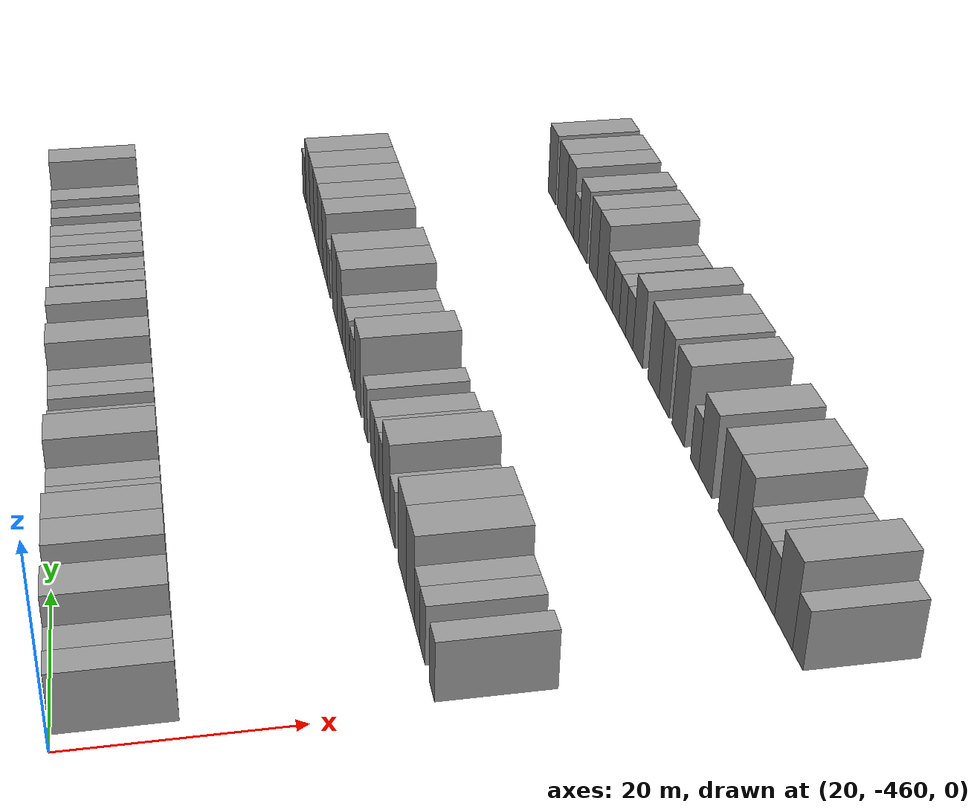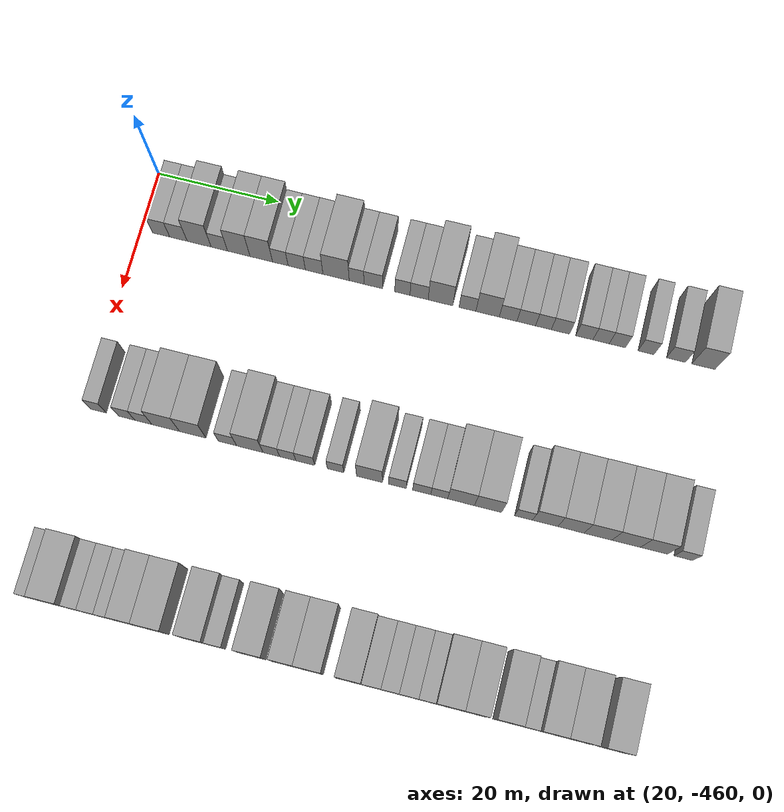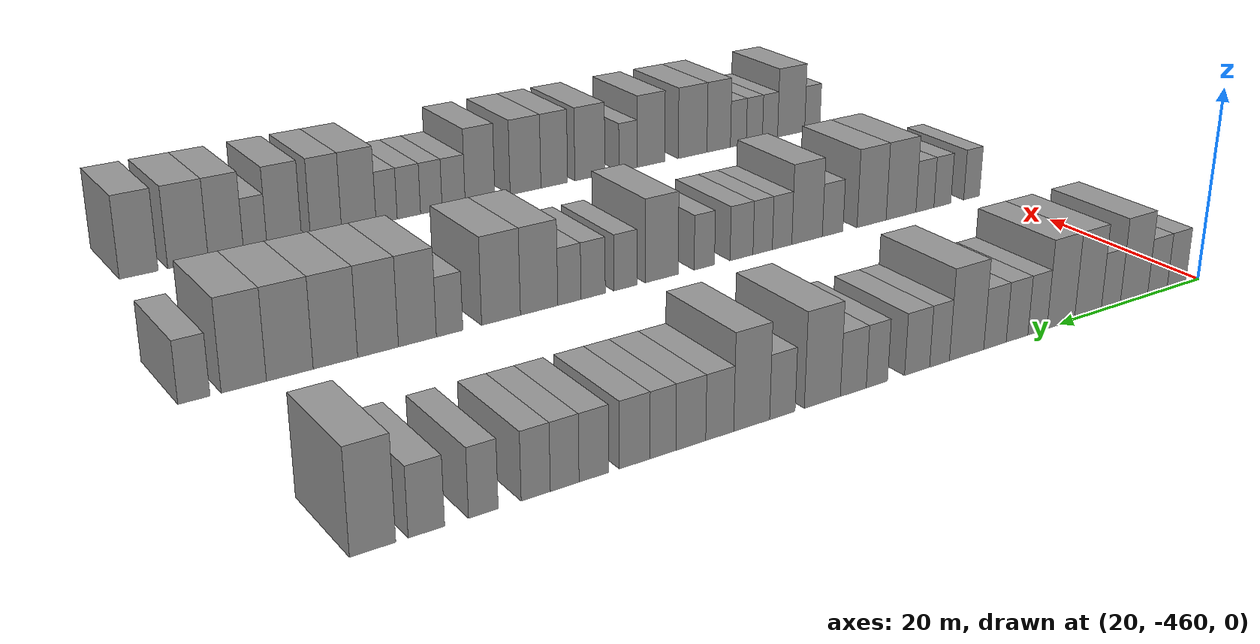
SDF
<sdf version="1.6">
 <world name="default">
  <model name="building_1">
   <static>1</static>
   <pose>25.0000 -456.5878 0 0.000000 0.000000 0.000000</pose>
   <link name="link">
    <pose>0 0 3.00 0 0 0</pose>
    <collision name="collision"><geometry><box><size>10.0000 2.8245 6.0000</size></box></geometry></collision>
    <visual name="visual">
     <cast_shadows>0</cast_shadows>
     <geometry><box><size>10.0000 2.8245 6.0000</size></box></geometry>
     <material>
      <script>
       <uri>model://grey_wall/materials/scripts</uri>
       <uri>model://grey_wall/materials/textures</uri>
       <name>vrc/grey_wall</name>
      </script>
     </material>
    </visual>
   </link>
  </model>
  <model name="building_2">
   <static>1</static>
   <pose>25.0000 -453.7290 0 0.000000 0.000000 0.000000</pose>
   <link name="link">
    <pose>0 0 3.00 0 0 0</pose>
    <collision name="collision"><geometry><box><size>10.0000 2.8931 6.0000</size></box></geometry></collision>
    <visual name="visual">
     <cast_shadows>0</cast_shadows>
     <geometry><box><size>10.0000 2.8931 6.0000</size></box></geometry>
     <material>
      <script>
       <uri>model://grey_wall/materials/scripts</uri>
       <uri>model://grey_wall/materials/textures</uri>
       <name>vrc/grey_wall</name>
      </script>
     </material>
    </visual>
   </link>
  </model>
  <model name="building_3">
   <static>1</static>
   <pose>25.0000 -450.3081 0 0.000000 0.000000 0.000000</pose>
   <link name="link">
    <pose>0 0 4.50 0 0 0</pose>
    <collision name="collision"><geometry><box><size>10.0000 3.9486 9.0000</size></box></geometry></collision>
    <visual name="visual">
     <cast_shadows>0</cast_shadows>
     <geometry><box><size>10.0000 3.9486 9.0000</size></box></geometry>
     <material>
      <script>
       <uri>model://grey_wall/materials/scripts</uri>
       <uri>model://grey_wall/materials/textures</uri>
       <name>vrc/grey_wall</name>
      </script>
     </material>
    </visual>
   </link>
  </model>
  <model name="building_4">
   <static>1</static>
   <pose>25.0000 -446.9821 0 0.000000 0.000000 0.000000</pose>
   <link name="link">
    <pose>0 0 3.00 0 0 0</pose>
    <collision name="collision"><geometry><box><size>10.0000 2.7034 6.0000</size></box></geometry></collision>
    <visual name="visual">
     <cast_shadows>0</cast_shadows>
     <geometry><box><size>10.0000 2.7034 6.0000</size></box></geometry>
     <material>
      <script>
       <uri>model://grey_wall/materials/scripts</uri>
       <uri>model://grey_wall/materials/textures</uri>
       <name>vrc/grey_wall</name>
      </script>
     </material>
    </visual>
   </link>
  </model>
  <model name="building_5">
   <static>1</static>
   <pose>25.0000 -443.7848 0 0.000000 0.000000 0.000000</pose>
   <link name="link">
    <pose>0 0 4.50 0 0 0</pose>
    <collision name="collision"><geometry><box><size>10.0000 3.6912 9.0000</size></box></geometry></collision>
    <visual name="visual">
     <cast_shadows>0</cast_shadows>
     <geometry><box><size>10.0000 3.6912 9.0000</size></box></geometry>
     <material>
      <script>
       <uri>model://grey_wall/materials/scripts</uri>
       <uri>model://grey_wall/materials/textures</uri>
       <name>vrc/grey_wall</name>
      </script>
     </material>
    </visual>
   </link>
  </model>
  <model name="building_6">
   <static>1</static>
   <pose>25.0000 -440.0766 0 0.000000 0.000000 0.000000</pose>
   <link name="link">
    <pose>0 0 4.50 0 0 0</pose>
    <collision name="collision"><geometry><box><size>10.0000 3.7251 9.0000</size></box></geometry></collision>
    <visual name="visual">
     <cast_shadows>0</cast_shadows>
     <geometry><box><size>10.0000 3.7251 9.0000</size></box></geometry>
     <material>
      <script>
       <uri>model://grey_wall/materials/scripts</uri>
       <uri>model://grey_wall/materials/textures</uri>
       <name>vrc/grey_wall</name>
      </script>
     </material>
    </visual>
   </link>
  </model>
  <model name="building_7">
   <static>1</static>
   <pose>25.0000 -436.9483 0 0.000000 0.000000 0.000000</pose>
   <link name="link">
    <pose>0 0 3.00 0 0 0</pose>
    <collision name="collision"><geometry><box><size>10.0000 2.5317 6.0000</size></box></geometry></collision>
    <visual name="visual">
     <cast_shadows>0</cast_shadows>
     <geometry><box><size>10.0000 2.5317 6.0000</size></box></geometry>
     <material>
      <script>
       <uri>model://grey_wall/materials/scripts</uri>
       <uri>model://grey_wall/materials/textures</uri>
       <name>vrc/grey_wall</name>
      </script>
     </material>
    </visual>
   </link>
  </model>
  <model name="building_8">
   <static>1</static>
   <pose>25.0000 -434.2681 0 0.000000 0.000000 0.000000</pose>
   <link name="link">
    <pose>0 0 3.00 0 0 0</pose>
    <collision name="collision"><geometry><box><size>10.0000 2.8287 6.0000</size></box></geometry></collision>
    <visual name="visual">
     <cast_shadows>0</cast_shadows>
     <geometry><box><size>10.0000 2.8287 6.0000</size></box></geometry>
     <material>
      <script>
       <uri>model://grey_wall/materials/scripts</uri>
       <uri>model://grey_wall/materials/textures</uri>
       <name>vrc/grey_wall</name>
      </script>
     </material>
    </visual>
   </link>
  </model>
  <model name="building_9">
   <static>1</static>
   <pose>25.0000 -431.4158 0 0.000000 0.000000 0.000000</pose>
   <link name="link">
    <pose>0 0 3.00 0 0 0</pose>
    <collision name="collision"><geometry><box><size>10.0000 2.8757 6.0000</size></box></geometry></collision>
    <visual name="visual">
     <cast_shadows>0</cast_shadows>
     <geometry><box><size>10.0000 2.8757 6.0000</size></box></geometry>
     <material>
      <script>
       <uri>model://grey_wall/materials/scripts</uri>
       <uri>model://grey_wall/materials/textures</uri>
       <name>vrc/grey_wall</name>
      </script>
     </material>
    </visual>
   </link>
  </model>
  <model name="building_10">
   <static>1</static>
   <pose>25.0000 -427.8407 0 0.000000 0.000000 0.000000</pose>
   <link name="link">
    <pose>0 0 4.50 0 0 0</pose>
    <collision name="collision"><geometry><box><size>10.0000 4.2745 9.0000</size></box></geometry></collision>
    <visual name="visual">
     <cast_shadows>0</cast_shadows>
     <geometry><box><size>10.0000 4.2745 9.0000</size></box></geometry>
     <material>
      <script>
       <uri>model://grey_wall/materials/scripts</uri>
       <uri>model://grey_wall/materials/textures</uri>
       <name>vrc/grey_wall</name>
      </script>
     </material>
    </visual>
   </link>
  </model>
  <model name="building_11">
   <static>1</static>
   <pose>25.0000 -424.4925 0 0.000000 0.000000 0.000000</pose>
   <link name="link">
    <pose>0 0 3.00 0 0 0</pose>
    <collision name="collision"><geometry><box><size>10.0000 2.4220 6.0000</size></box></geometry></collision>
    <visual name="visual">
     <cast_shadows>0</cast_shadows>
     <geometry><box><size>10.0000 2.4220 6.0000</size></box></geometry>
     <material>
      <script>
       <uri>model://grey_wall/materials/scripts</uri>
       <uri>model://grey_wall/materials/textures</uri>
       <name>vrc/grey_wall</name>
      </script>
     </material>
    </visual>
   </link>
  </model>
  <model name="building_12">
   <static>1</static>
   <pose>25.0000 -421.7866 0 0.000000 0.000000 0.000000</pose>
   <link name="link">
    <pose>0 0 3.00 0 0 0</pose>
    <collision name="collision"><geometry><box><size>10.0000 2.9898 6.0000</size></box></geometry></collision>
    <visual name="visual">
     <cast_shadows>0</cast_shadows>
     <geometry><box><size>10.0000 2.9898 6.0000</size></box></geometry>
     <material>
      <script>
       <uri>model://grey_wall/materials/scripts</uri>
       <uri>model://grey_wall/materials/textures</uri>
       <name>vrc/grey_wall</name>
      </script>
     </material>
    </visual>
   </link>
  </model>
  <model name="building_13">
   <static>1</static>
   <pose>25.0000 -417.0590 0 0.000000 0.000000 0.000000</pose>
   <link name="link">
    <pose>0 0 3.00 0 0 0</pose>
    <collision name="collision"><geometry><box><size>10.0000 2.4655 6.0000</size></box></geometry></collision>
    <visual name="visual">
     <cast_shadows>0</cast_shadows>
     <geometry><box><size>10.0000 2.4655 6.0000</size></box></geometry>
     <material>
      <script>
       <uri>model://grey_wall/materials/scripts</uri>
       <uri>model://grey_wall/materials/textures</uri>
       <name>vrc/grey_wall</name>
      </script>
     </material>
    </visual>
   </link>
  </model>
  <model name="building_14">
   <static>1</static>
   <pose>25.0000 -414.3582 0 0.000000 0.000000 0.000000</pose>
   <link name="link">
    <pose>0 0 3.00 0 0 0</pose>
    <collision name="collision"><geometry><box><size>10.0000 2.9362 6.0000</size></box></geometry></collision>
    <visual name="visual">
     <cast_shadows>0</cast_shadows>
     <geometry><box><size>10.0000 2.9362 6.0000</size></box></geometry>
     <material>
      <script>
       <uri>model://grey_wall/materials/scripts</uri>
       <uri>model://grey_wall/materials/textures</uri>
       <name>vrc/grey_wall</name>
      </script>
     </material>
    </visual>
   </link>
  </model>
  <model name="building_15">
   <static>1</static>
   <pose>25.0000 -410.9005 0 0.000000 0.000000 0.000000</pose>
   <link name="link">
    <pose>0 0 4.50 0 0 0</pose>
    <collision name="collision"><geometry><box><size>10.0000 3.9791 9.0000</size></box></geometry></collision>
    <visual name="visual">
     <cast_shadows>0</cast_shadows>
     <geometry><box><size>10.0000 3.9791 9.0000</size></box></geometry>
     <material>
      <script>
       <uri>model://grey_wall/materials/scripts</uri>
       <uri>model://grey_wall/materials/textures</uri>
       <name>vrc/grey_wall</name>
      </script>
     </material>
    </visual>
   </link>
  </model>
  <model name="building_16">
   <static>1</static>
   <pose>25.0000 -406.5454 0 0.000000 0.000000 0.000000</pose>
   <link name="link">
    <pose>0 0 3.00 0 0 0</pose>
    <collision name="collision"><geometry><box><size>10.0000 2.7313 6.0000</size></box></geometry></collision>
    <visual name="visual">
     <cast_shadows>0</cast_shadows>
     <geometry><box><size>10.0000 2.7313 6.0000</size></box></geometry>
     <material>
      <script>
       <uri>model://grey_wall/materials/scripts</uri>
       <uri>model://grey_wall/materials/textures</uri>
       <name>vrc/grey_wall</name>
      </script>
     </material>
    </visual>
   </link>
  </model>
  <model name="building_17">
   <static>1</static>
   <pose>25.0000 -403.3031 0 0.000000 0.000000 0.000000</pose>
   <link name="link">
    <pose>0 0 4.50 0 0 0</pose>
    <collision name="collision"><geometry><box><size>10.0000 3.7533 9.0000</size></box></geometry></collision>
    <visual name="visual">
     <cast_shadows>0</cast_shadows>
     <geometry><box><size>10.0000 3.7533 9.0000</size></box></geometry>
     <material>
      <script>
       <uri>model://grey_wall/materials/scripts</uri>
       <uri>model://grey_wall/materials/textures</uri>
       <name>vrc/grey_wall</name>
      </script>
     </material>
    </visual>
   </link>
  </model>
  <model name="building_18">
   <static>1</static>
   <pose>25.0000 -400.0018 0 0.000000 0.000000 0.000000</pose>
   <link name="link">
    <pose>0 0 3.00 0 0 0</pose>
    <collision name="collision"><geometry><box><size>10.0000 2.8493 6.0000</size></box></geometry></collision>
    <visual name="visual">
     <cast_shadows>0</cast_shadows>
     <geometry><box><size>10.0000 2.8493 6.0000</size></box></geometry>
     <material>
      <script>
       <uri>model://grey_wall/materials/scripts</uri>
       <uri>model://grey_wall/materials/textures</uri>
       <name>vrc/grey_wall</name>
      </script>
     </material>
    </visual>
   </link>
  </model>
  <model name="building_19">
   <static>1</static>
   <pose>25.0000 -397.0880 0 0.000000 0.000000 0.000000</pose>
   <link name="link">
    <pose>0 0 3.00 0 0 0</pose>
    <collision name="collision"><geometry><box><size>10.0000 2.9783 6.0000</size></box></geometry></collision>
    <visual name="visual">
     <cast_shadows>0</cast_shadows>
     <geometry><box><size>10.0000 2.9783 6.0000</size></box></geometry>
     <material>
      <script>
       <uri>model://grey_wall/materials/scripts</uri>
       <uri>model://grey_wall/materials/textures</uri>
       <name>vrc/grey_wall</name>
      </script>
     </material>
    </visual>
   </link>
  </model>
  <model name="building_20">
   <static>1</static>
   <pose>25.0000 -394.3391 0 0.000000 0.000000 0.000000</pose>
   <link name="link">
    <pose>0 0 3.00 0 0 0</pose>
    <collision name="collision"><geometry><box><size>10.0000 2.5194 6.0000</size></box></geometry></collision>
    <visual name="visual">
     <cast_shadows>0</cast_shadows>
     <geometry><box><size>10.0000 2.5194 6.0000</size></box></geometry>
     <material>
      <script>
       <uri>model://grey_wall/materials/scripts</uri>
       <uri>model://grey_wall/materials/textures</uri>
       <name>vrc/grey_wall</name>
      </script>
     </material>
    </visual>
   </link>
  </model>
  <model name="building_21">
   <static>1</static>
   <pose>25.0000 -391.6232 0 0.000000 0.000000 0.000000</pose>
   <link name="link">
    <pose>0 0 3.00 0 0 0</pose>
    <collision name="collision"><geometry><box><size>10.0000 2.9125 6.0000</size></box></geometry></collision>
    <visual name="visual">
     <cast_shadows>0</cast_shadows>
     <geometry><box><size>10.0000 2.9125 6.0000</size></box></geometry>
     <material>
      <script>
       <uri>model://grey_wall/materials/scripts</uri>
       <uri>model://grey_wall/materials/textures</uri>
       <name>vrc/grey_wall</name>
      </script>
     </material>
    </visual>
   </link>
  </model>
  <model name="building_22">
   <static>1</static>
   <pose>25.0000 -387.7908 0 0.000000 0.000000 0.000000</pose>
   <link name="link">
    <pose>0 0 3.00 0 0 0</pose>
    <collision name="collision"><geometry><box><size>10.0000 2.7523 6.0000</size></box></geometry></collision>
    <visual name="visual">
     <cast_shadows>0</cast_shadows>
     <geometry><box><size>10.0000 2.7523 6.0000</size></box></geometry>
     <material>
      <script>
       <uri>model://grey_wall/materials/scripts</uri>
       <uri>model://grey_wall/materials/textures</uri>
       <name>vrc/grey_wall</name>
      </script>
     </material>
    </visual>
   </link>
  </model>
  <model name="building_23">
   <static>1</static>
   <pose>25.0000 -385.1148 0 0.000000 0.000000 0.000000</pose>
   <link name="link">
    <pose>0 0 3.00 0 0 0</pose>
    <collision name="collision"><geometry><box><size>10.0000 2.5996 6.0000</size></box></geometry></collision>
    <visual name="visual">
     <cast_shadows>0</cast_shadows>
     <geometry><box><size>10.0000 2.5996 6.0000</size></box></geometry>
     <material>
      <script>
       <uri>model://grey_wall/materials/scripts</uri>
       <uri>model://grey_wall/materials/textures</uri>
       <name>vrc/grey_wall</name>
      </script>
     </material>
    </visual>
   </link>
  </model>
  <model name="building_24">
   <static>1</static>
   <pose>25.0000 -382.5200 0 0.000000 0.000000 0.000000</pose>
   <link name="link">
    <pose>0 0 3.00 0 0 0</pose>
    <collision name="collision"><geometry><box><size>10.0000 2.5900 6.0000</size></box></geometry></collision>
    <visual name="visual">
     <cast_shadows>0</cast_shadows>
     <geometry><box><size>10.0000 2.5900 6.0000</size></box></geometry>
     <material>
      <script>
       <uri>model://grey_wall/materials/scripts</uri>
       <uri>model://grey_wall/materials/textures</uri>
       <name>vrc/grey_wall</name>
      </script>
     </material>
    </visual>
   </link>
  </model>
  <model name="building_25">
   <static>1</static>
   <pose>25.0000 -377.9569 0 0.000000 0.000000 0.000000</pose>
   <link name="link">
    <pose>0 0 3.00 0 0 0</pose>
    <collision name="collision"><geometry><box><size>10.0000 2.5362 6.0000</size></box></geometry></collision>
    <visual name="visual">
     <cast_shadows>0</cast_shadows>
     <geometry><box><size>10.0000 2.5362 6.0000</size></box></geometry>
     <material>
      <script>
       <uri>model://grey_wall/materials/scripts</uri>
       <uri>model://grey_wall/materials/textures</uri>
       <name>vrc/grey_wall</name>
      </script>
     </material>
    </visual>
   </link>
  </model>
  <model name="building_26">
   <static>1</static>
   <pose>25.0000 -373.1911 0 0.000000 0.000000 0.000000</pose>
   <link name="link">
    <pose>0 0 3.00 0 0 0</pose>
    <collision name="collision"><geometry><box><size>10.0000 2.9954 6.0000</size></box></geometry></collision>
    <visual name="visual">
     <cast_shadows>0</cast_shadows>
     <geometry><box><size>10.0000 2.9954 6.0000</size></box></geometry>
     <material>
      <script>
       <uri>model://grey_wall/materials/scripts</uri>
       <uri>model://grey_wall/materials/textures</uri>
       <name>vrc/grey_wall</name>
      </script>
     </material>
    </visual>
   </link>
  </model>
  <model name="building_27">
   <static>1</static>
   <pose>25.0000 -368.8588 0 0.000000 0.000000 0.000000</pose>
   <link name="link">
    <pose>0 0 4.50 0 0 0</pose>
    <collision name="collision"><geometry><box><size>10.0000 3.6692 9.0000</size></box></geometry></collision>
    <visual name="visual">
     <cast_shadows>0</cast_shadows>
     <geometry><box><size>10.0000 3.6692 9.0000</size></box></geometry>
     <material>
      <script>
       <uri>model://grey_wall/materials/scripts</uri>
       <uri>model://grey_wall/materials/textures</uri>
       <name>vrc/grey_wall</name>
      </script>
     </material>
    </visual>
   </link>
  </model>
  <model name="building_240">
   <static>1</static>
   <pose>55.0000 -457.7602 0 0.000000 0.000000 0.000000</pose>
   <link name="link">
    <pose>0 0 3.00 0 0 0</pose>
    <collision name="collision"><geometry><box><size>10.0000 2.4796 6.0000</size></box></geometry></collision>
    <visual name="visual">
     <cast_shadows>0</cast_shadows>
     <geometry><box><size>10.0000 2.4796 6.0000</size></box></geometry>
     <material>
      <script>
       <uri>model://grey_wall/materials/scripts</uri>
       <uri>model://grey_wall/materials/textures</uri>
       <name>vrc/grey_wall</name>
      </script>
     </material>
    </visual>
   </link>
  </model>
  <model name="building_241">
   <static>1</static>
   <pose>55.0000 -453.2183 0 0.000000 0.000000 0.000000</pose>
   <link name="link">
    <pose>0 0 3.00 0 0 0</pose>
    <collision name="collision"><geometry><box><size>10.0000 2.6042 6.0000</size></box></geometry></collision>
    <visual name="visual">
     <cast_shadows>0</cast_shadows>
     <geometry><box><size>10.0000 2.6042 6.0000</size></box></geometry>
     <material>
      <script>
       <uri>model://grey_wall/materials/scripts</uri>
       <uri>model://grey_wall/materials/textures</uri>
       <name>vrc/grey_wall</name>
      </script>
     </material>
    </visual>
   </link>
  </model>
  <model name="building_242">
   <static>1</static>
   <pose>55.0000 -450.5517 0 0.000000 0.000000 0.000000</pose>
   <link name="link">
    <pose>0 0 3.00 0 0 0</pose>
    <collision name="collision"><geometry><box><size>10.0000 2.7290 6.0000</size></box></geometry></collision>
    <visual name="visual">
     <cast_shadows>0</cast_shadows>
     <geometry><box><size>10.0000 2.7290 6.0000</size></box></geometry>
     <material>
      <script>
       <uri>model://grey_wall/materials/scripts</uri>
       <uri>model://grey_wall/materials/textures</uri>
       <name>vrc/grey_wall</name>
      </script>
     </material>
    </visual>
   </link>
  </model>
  <model name="building_243">
   <static>1</static>
   <pose>55.0000 -446.9739 0 0.000000 0.000000 0.000000</pose>
   <link name="link">
    <pose>0 0 4.50 0 0 0</pose>
    <collision name="collision"><geometry><box><size>10.0000 4.4268 9.0000</size></box></geometry></collision>
    <visual name="visual">
     <cast_shadows>0</cast_shadows>
     <geometry><box><size>10.0000 4.4268 9.0000</size></box></geometry>
     <material>
      <script>
       <uri>model://grey_wall/materials/scripts</uri>
       <uri>model://grey_wall/materials/textures</uri>
       <name>vrc/grey_wall</name>
      </script>
     </material>
    </visual>
   </link>
  </model>
  <model name="building_244">
   <static>1</static>
   <pose>55.0000 -442.6541 0 0.000000 0.000000 0.000000</pose>
   <link name="link">
    <pose>0 0 4.50 0 0 0</pose>
    <collision name="collision"><geometry><box><size>10.0000 4.2127 9.0000</size></box></geometry></collision>
    <visual name="visual">
     <cast_shadows>0</cast_shadows>
     <geometry><box><size>10.0000 4.2127 9.0000</size></box></geometry>
     <material>
      <script>
       <uri>model://grey_wall/materials/scripts</uri>
       <uri>model://grey_wall/materials/textures</uri>
       <name>vrc/grey_wall</name>
      </script>
     </material>
    </visual>
   </link>
  </model>
  <model name="building_245">
   <static>1</static>
   <pose>55.0000 -437.0961 0 0.000000 0.000000 0.000000</pose>
   <link name="link">
    <pose>0 0 3.00 0 0 0</pose>
    <collision name="collision"><geometry><box><size>10.0000 2.9034 6.0000</size></box></geometry></collision>
    <visual name="visual">
     <cast_shadows>0</cast_shadows>
     <geometry><box><size>10.0000 2.9034 6.0000</size></box></geometry>
     <material>
      <script>
       <uri>model://grey_wall/materials/scripts</uri>
       <uri>model://grey_wall/materials/textures</uri>
       <name>vrc/grey_wall</name>
      </script>
     </material>
    </visual>
   </link>
  </model>
  <model name="building_246">
   <static>1</static>
   <pose>55.0000 -433.5494 0 0.000000 0.000000 0.000000</pose>
   <link name="link">
    <pose>0 0 4.50 0 0 0</pose>
    <collision name="collision"><geometry><box><size>10.0000 4.1899 9.0000</size></box></geometry></collision>
    <visual name="visual">
     <cast_shadows>0</cast_shadows>
     <geometry><box><size>10.0000 4.1899 9.0000</size></box></geometry>
     <material>
      <script>
       <uri>model://grey_wall/materials/scripts</uri>
       <uri>model://grey_wall/materials/textures</uri>
       <name>vrc/grey_wall</name>
      </script>
     </material>
    </visual>
   </link>
  </model>
  <model name="building_247">
   <static>1</static>
   <pose>55.0000 -430.1438 0 0.000000 0.000000 0.000000</pose>
   <link name="link">
    <pose>0 0 3.00 0 0 0</pose>
    <collision name="collision"><geometry><box><size>10.0000 2.6214 6.0000</size></box></geometry></collision>
    <visual name="visual">
     <cast_shadows>0</cast_shadows>
     <geometry><box><size>10.0000 2.6214 6.0000</size></box></geometry>
     <material>
      <script>
       <uri>model://grey_wall/materials/scripts</uri>
       <uri>model://grey_wall/materials/textures</uri>
       <name>vrc/grey_wall</name>
      </script>
     </material>
    </visual>
   </link>
  </model>
  <model name="building_248">
   <static>1</static>
   <pose>55.0000 -427.5492 0 0.000000 0.000000 0.000000</pose>
   <link name="link">
    <pose>0 0 3.00 0 0 0</pose>
    <collision name="collision"><geometry><box><size>10.0000 2.5678 6.0000</size></box></geometry></collision>
    <visual name="visual">
     <cast_shadows>0</cast_shadows>
     <geometry><box><size>10.0000 2.5678 6.0000</size></box></geometry>
     <material>
      <script>
       <uri>model://grey_wall/materials/scripts</uri>
       <uri>model://grey_wall/materials/textures</uri>
       <name>vrc/grey_wall</name>
      </script>
     </material>
    </visual>
   </link>
  </model>
  <model name="building_249">
   <static>1</static>
   <pose>55.0000 -424.7708 0 0.000000 0.000000 0.000000</pose>
   <link name="link">
    <pose>0 0 3.00 0 0 0</pose>
    <collision name="collision"><geometry><box><size>10.0000 2.9891 6.0000</size></box></geometry></collision>
    <visual name="visual">
     <cast_shadows>0</cast_shadows>
     <geometry><box><size>10.0000 2.9891 6.0000</size></box></geometry>
     <material>
      <script>
       <uri>model://grey_wall/materials/scripts</uri>
       <uri>model://grey_wall/materials/textures</uri>
       <name>vrc/grey_wall</name>
      </script>
     </material>
    </visual>
   </link>
  </model>
  <model name="building_250">
   <static>1</static>
   <pose>55.0000 -419.9841 0 0.000000 0.000000 0.000000</pose>
   <link name="link">
    <pose>0 0 3.00 0 0 0</pose>
    <collision name="collision"><geometry><box><size>10.0000 2.5843 6.0000</size></box></geometry></collision>
    <visual name="visual">
     <cast_shadows>0</cast_shadows>
     <geometry><box><size>10.0000 2.5843 6.0000</size></box></geometry>
     <material>
      <script>
       <uri>model://grey_wall/materials/scripts</uri>
       <uri>model://grey_wall/materials/textures</uri>
       <name>vrc/grey_wall</name>
      </script>
     </material>
    </visual>
   </link>
  </model>
  <model name="building_251">
   <static>1</static>
   <pose>55.0000 -414.6680 0 0.000000 0.000000 0.000000</pose>
   <link name="link">
    <pose>0 0 4.50 0 0 0</pose>
    <collision name="collision"><geometry><box><size>10.0000 4.0478 9.0000</size></box></geometry></collision>
    <visual name="visual">
     <cast_shadows>0</cast_shadows>
     <geometry><box><size>10.0000 4.0478 9.0000</size></box></geometry>
     <material>
      <script>
       <uri>model://grey_wall/materials/scripts</uri>
       <uri>model://grey_wall/materials/textures</uri>
       <name>vrc/grey_wall</name>
      </script>
     </material>
    </visual>
   </link>
  </model>
  <model name="building_252">
   <static>1</static>
   <pose>55.0000 -410.2727 0 0.000000 0.000000 0.000000</pose>
   <link name="link">
    <pose>0 0 3.00 0 0 0</pose>
    <collision name="collision"><geometry><box><size>10.0000 2.7428 6.0000</size></box></geometry></collision>
    <visual name="visual">
     <cast_shadows>0</cast_shadows>
     <geometry><box><size>10.0000 2.7428 6.0000</size></box></geometry>
     <material>
      <script>
       <uri>model://grey_wall/materials/scripts</uri>
       <uri>model://grey_wall/materials/textures</uri>
       <name>vrc/grey_wall</name>
      </script>
     </material>
    </visual>
   </link>
  </model>
  <model name="building_253">
   <static>1</static>
   <pose>55.0000 -406.4857 0 0.000000 0.000000 0.000000</pose>
   <link name="link">
    <pose>0 0 3.00 0 0 0</pose>
    <collision name="collision"><geometry><box><size>10.0000 2.8313 6.0000</size></box></geometry></collision>
    <visual name="visual">
     <cast_shadows>0</cast_shadows>
     <geometry><box><size>10.0000 2.8313 6.0000</size></box></geometry>
     <material>
      <script>
       <uri>model://grey_wall/materials/scripts</uri>
       <uri>model://grey_wall/materials/textures</uri>
       <name>vrc/grey_wall</name>
      </script>
     </material>
    </visual>
   </link>
  </model>
  <model name="building_254">
   <static>1</static>
   <pose>55.0000 -403.7462 0 0.000000 0.000000 0.000000</pose>
   <link name="link">
    <pose>0 0 3.00 0 0 0</pose>
    <collision name="collision"><geometry><box><size>10.0000 2.6476 6.0000</size></box></geometry></collision>
    <visual name="visual">
     <cast_shadows>0</cast_shadows>
     <geometry><box><size>10.0000 2.6476 6.0000</size></box></geometry>
     <material>
      <script>
       <uri>model://grey_wall/materials/scripts</uri>
       <uri>model://grey_wall/materials/textures</uri>
       <name>vrc/grey_wall</name>
      </script>
     </material>
    </visual>
   </link>
  </model>
  <model name="building_255">
   <static>1</static>
   <pose>55.0000 -400.3311 0 0.000000 0.000000 0.000000</pose>
   <link name="link">
    <pose>0 0 4.50 0 0 0</pose>
    <collision name="collision"><geometry><box><size>10.0000 4.1827 9.0000</size></box></geometry></collision>
    <visual name="visual">
     <cast_shadows>0</cast_shadows>
     <geometry><box><size>10.0000 4.1827 9.0000</size></box></geometry>
     <material>
      <script>
       <uri>model://grey_wall/materials/scripts</uri>
       <uri>model://grey_wall/materials/textures</uri>
       <name>vrc/grey_wall</name>
      </script>
     </material>
    </visual>
   </link>
  </model>
  <model name="building_256">
   <static>1</static>
   <pose>55.0000 -396.1263 0 0.000000 0.000000 0.000000</pose>
   <link name="link">
    <pose>0 0 4.50 0 0 0</pose>
    <collision name="collision"><geometry><box><size>10.0000 4.2268 9.0000</size></box></geometry></collision>
    <visual name="visual">
     <cast_shadows>0</cast_shadows>
     <geometry><box><size>10.0000 4.2268 9.0000</size></box></geometry>
     <material>
      <script>
       <uri>model://grey_wall/materials/scripts</uri>
       <uri>model://grey_wall/materials/textures</uri>
       <name>vrc/grey_wall</name>
      </script>
     </material>
    </visual>
   </link>
  </model>
  <model name="building_257">
   <static>1</static>
   <pose>55.0000 -390.6225 0 0.000000 0.000000 0.000000</pose>
   <link name="link">
    <pose>0 0 3.00 0 0 0</pose>
    <collision name="collision"><geometry><box><size>10.0000 2.7810 6.0000</size></box></geometry></collision>
    <visual name="visual">
     <cast_shadows>0</cast_shadows>
     <geometry><box><size>10.0000 2.7810 6.0000</size></box></geometry>
     <material>
      <script>
       <uri>model://grey_wall/materials/scripts</uri>
       <uri>model://grey_wall/materials/textures</uri>
       <name>vrc/grey_wall</name>
      </script>
     </material>
    </visual>
   </link>
  </model>
  <model name="building_258">
   <static>1</static>
   <pose>55.0000 -387.2879 0 0.000000 0.000000 0.000000</pose>
   <link name="link">
    <pose>0 0 4.50 0 0 0</pose>
    <collision name="collision"><geometry><box><size>10.0000 3.8882 9.0000</size></box></geometry></collision>
    <visual name="visual">
     <cast_shadows>0</cast_shadows>
     <geometry><box><size>10.0000 3.8882 9.0000</size></box></geometry>
     <material>
      <script>
       <uri>model://grey_wall/materials/scripts</uri>
       <uri>model://grey_wall/materials/textures</uri>
       <name>vrc/grey_wall</name>
      </script>
     </material>
    </visual>
   </link>
  </model>
  <model name="building_259">
   <static>1</static>
   <pose>55.0000 -383.3052 0 0.000000 0.000000 0.000000</pose>
   <link name="link">
    <pose>0 0 4.50 0 0 0</pose>
    <collision name="collision"><geometry><box><size>10.0000 4.0772 9.0000</size></box></geometry></collision>
    <visual name="visual">
     <cast_shadows>0</cast_shadows>
     <geometry><box><size>10.0000 4.0772 9.0000</size></box></geometry>
     <material>
      <script>
       <uri>model://grey_wall/materials/scripts</uri>
       <uri>model://grey_wall/materials/textures</uri>
       <name>vrc/grey_wall</name>
      </script>
     </material>
    </visual>
   </link>
  </model>
  <model name="building_260">
   <static>1</static>
   <pose>55.0000 -379.1093 0 0.000000 0.000000 0.000000</pose>
   <link name="link">
    <pose>0 0 4.50 0 0 0</pose>
    <collision name="collision"><geometry><box><size>10.0000 4.3146 9.0000</size></box></geometry></collision>
    <visual name="visual">
     <cast_shadows>0</cast_shadows>
     <geometry><box><size>10.0000 4.3146 9.0000</size></box></geometry>
     <material>
      <script>
       <uri>model://grey_wall/materials/scripts</uri>
       <uri>model://grey_wall/materials/textures</uri>
       <name>vrc/grey_wall</name>
      </script>
     </material>
    </visual>
   </link>
  </model>
  <model name="building_261">
   <static>1</static>
   <pose>55.0000 -374.7518 0 0.000000 0.000000 0.000000</pose>
   <link name="link">
    <pose>0 0 4.50 0 0 0</pose>
    <collision name="collision"><geometry><box><size>10.0000 4.4004 9.0000</size></box></geometry></collision>
    <visual name="visual">
     <cast_shadows>0</cast_shadows>
     <geometry><box><size>10.0000 4.4004 9.0000</size></box></geometry>
     <material>
      <script>
       <uri>model://grey_wall/materials/scripts</uri>
       <uri>model://grey_wall/materials/textures</uri>
       <name>vrc/grey_wall</name>
      </script>
     </material>
    </visual>
   </link>
  </model>
  <model name="building_262">
   <static>1</static>
   <pose>55.0000 -370.4875 0 0.000000 0.000000 0.000000</pose>
   <link name="link">
    <pose>0 0 4.50 0 0 0</pose>
    <collision name="collision"><geometry><box><size>10.0000 4.1281 9.0000</size></box></geometry></collision>
    <visual name="visual">
     <cast_shadows>0</cast_shadows>
     <geometry><box><size>10.0000 4.1281 9.0000</size></box></geometry>
     <material>
      <script>
       <uri>model://grey_wall/materials/scripts</uri>
       <uri>model://grey_wall/materials/textures</uri>
       <name>vrc/grey_wall</name>
      </script>
     </material>
    </visual>
   </link>
  </model>
  <model name="building_263">
   <static>1</static>
   <pose>55.0000 -365.9966 0 0.000000 0.000000 0.000000</pose>
   <link name="link">
    <pose>0 0 3.00 0 0 0</pose>
    <collision name="collision"><geometry><box><size>10.0000 2.8538 6.0000</size></box></geometry></collision>
    <visual name="visual">
     <cast_shadows>0</cast_shadows>
     <geometry><box><size>10.0000 2.8538 6.0000</size></box></geometry>
     <material>
      <script>
       <uri>model://grey_wall/materials/scripts</uri>
       <uri>model://grey_wall/materials/textures</uri>
       <name>vrc/grey_wall</name>
      </script>
     </material>
    </visual>
   </link>
  </model>
  <model name="building_479">
   <static>1</static>
   <pose>85.0000 -458.7347 0 0.000000 0.000000 0.000000</pose>
   <link name="link">
    <pose>0 0 3.00 0 0 0</pose>
    <collision name="collision"><geometry><box><size>10.0000 2.5305 6.0000</size></box></geometry></collision>
    <visual name="visual">
     <cast_shadows>0</cast_shadows>
     <geometry><box><size>10.0000 2.5305 6.0000</size></box></geometry>
     <material>
      <script>
       <uri>model://grey_wall/materials/scripts</uri>
       <uri>model://grey_wall/materials/textures</uri>
       <name>vrc/grey_wall</name>
      </script>
     </material>
    </visual>
   </link>
  </model>
  <model name="building_480">
   <static>1</static>
   <pose>85.0000 -455.2579 0 0.000000 0.000000 0.000000</pose>
   <link name="link">
    <pose>0 0 4.50 0 0 0</pose>
    <collision name="collision"><geometry><box><size>10.0000 4.4231 9.0000</size></box></geometry></collision>
    <visual name="visual">
     <cast_shadows>0</cast_shadows>
     <geometry><box><size>10.0000 4.4231 9.0000</size></box></geometry>
     <material>
      <script>
       <uri>model://grey_wall/materials/scripts</uri>
       <uri>model://grey_wall/materials/textures</uri>
       <name>vrc/grey_wall</name>
      </script>
     </material>
    </visual>
   </link>
  </model>
  <model name="building_481">
   <static>1</static>
   <pose>85.0000 -451.8257 0 0.000000 0.000000 0.000000</pose>
   <link name="link">
    <pose>0 0 3.00 0 0 0</pose>
    <collision name="collision"><geometry><box><size>10.0000 2.4412 6.0000</size></box></geometry></collision>
    <visual name="visual">
     <cast_shadows>0</cast_shadows>
     <geometry><box><size>10.0000 2.4412 6.0000</size></box></geometry>
     <material>
      <script>
       <uri>model://grey_wall/materials/scripts</uri>
       <uri>model://grey_wall/materials/textures</uri>
       <name>vrc/grey_wall</name>
      </script>
     </material>
    </visual>
   </link>
  </model>
  <model name="building_482">
   <static>1</static>
   <pose>85.0000 -449.3230 0 0.000000 0.000000 0.000000</pose>
   <link name="link">
    <pose>0 0 3.00 0 0 0</pose>
    <collision name="collision"><geometry><box><size>10.0000 2.5644 6.0000</size></box></geometry></collision>
    <visual name="visual">
     <cast_shadows>0</cast_shadows>
     <geometry><box><size>10.0000 2.5644 6.0000</size></box></geometry>
     <material>
      <script>
       <uri>model://grey_wall/materials/scripts</uri>
       <uri>model://grey_wall/materials/textures</uri>
       <name>vrc/grey_wall</name>
      </script>
     </material>
    </visual>
   </link>
  </model>
  <model name="building_483">
   <static>1</static>
   <pose>85.0000 -446.7998 0 0.000000 0.000000 0.000000</pose>
   <link name="link">
    <pose>0 0 3.00 0 0 0</pose>
    <collision name="collision"><geometry><box><size>10.0000 2.4819 6.0000</size></box></geometry></collision>
    <visual name="visual">
     <cast_shadows>0</cast_shadows>
     <geometry><box><size>10.0000 2.4819 6.0000</size></box></geometry>
     <material>
      <script>
       <uri>model://grey_wall/materials/scripts</uri>
       <uri>model://grey_wall/materials/textures</uri>
       <name>vrc/grey_wall</name>
      </script>
     </material>
    </visual>
   </link>
  </model>
  <model name="building_484">
   <static>1</static>
   <pose>85.0000 -443.7441 0 0.000000 0.000000 0.000000</pose>
   <link name="link">
    <pose>0 0 4.50 0 0 0</pose>
    <collision name="collision"><geometry><box><size>10.0000 3.6295 9.0000</size></box></geometry></collision>
    <visual name="visual">
     <cast_shadows>0</cast_shadows>
     <geometry><box><size>10.0000 3.6295 9.0000</size></box></geometry>
     <material>
      <script>
       <uri>model://grey_wall/materials/scripts</uri>
       <uri>model://grey_wall/materials/textures</uri>
       <name>vrc/grey_wall</name>
      </script>
     </material>
    </visual>
   </link>
  </model>
  <model name="building_485">
   <static>1</static>
   <pose>85.0000 -439.7556 0 0.000000 0.000000 0.000000</pose>
   <link name="link">
    <pose>0 0 4.50 0 0 0</pose>
    <collision name="collision"><geometry><box><size>10.0000 4.3473 9.0000</size></box></geometry></collision>
    <visual name="visual">
     <cast_shadows>0</cast_shadows>
     <geometry><box><size>10.0000 4.3473 9.0000</size></box></geometry>
     <material>
      <script>
       <uri>model://grey_wall/materials/scripts</uri>
       <uri>model://grey_wall/materials/textures</uri>
       <name>vrc/grey_wall</name>
      </script>
     </material>
    </visual>
   </link>
  </model>
  <model name="building_486">
   <static>1</static>
   <pose>85.0000 -433.5477 0 0.000000 0.000000 0.000000</pose>
   <link name="link">
    <pose>0 0 4.50 0 0 0</pose>
    <collision name="collision"><geometry><box><size>10.0000 4.0685 9.0000</size></box></geometry></collision>
    <visual name="visual">
     <cast_shadows>0</cast_shadows>
     <geometry><box><size>10.0000 4.0685 9.0000</size></box></geometry>
     <material>
      <script>
       <uri>model://grey_wall/materials/scripts</uri>
       <uri>model://grey_wall/materials/textures</uri>
       <name>vrc/grey_wall</name>
      </script>
     </material>
    </visual>
   </link>
  </model>
  <model name="building_487">
   <static>1</static>
   <pose>85.0000 -430.2057 0 0.000000 0.000000 0.000000</pose>
   <link name="link">
    <pose>0 0 3.00 0 0 0</pose>
    <collision name="collision"><geometry><box><size>10.0000 2.6156 6.0000</size></box></geometry></collision>
    <visual name="visual">
     <cast_shadows>0</cast_shadows>
     <geometry><box><size>10.0000 2.6156 6.0000</size></box></geometry>
     <material>
      <script>
       <uri>model://grey_wall/materials/scripts</uri>
       <uri>model://grey_wall/materials/textures</uri>
       <name>vrc/grey_wall</name>
      </script>
     </material>
    </visual>
   </link>
  </model>
  <model name="building_488">
   <static>1</static>
   <pose>85.0000 -424.8019 0 0.000000 0.000000 0.000000</pose>
   <link name="link">
    <pose>0 0 4.50 0 0 0</pose>
    <collision name="collision"><geometry><box><size>10.0000 4.1919 9.0000</size></box></geometry></collision>
    <visual name="visual">
     <cast_shadows>0</cast_shadows>
     <geometry><box><size>10.0000 4.1919 9.0000</size></box></geometry>
     <material>
      <script>
       <uri>model://grey_wall/materials/scripts</uri>
       <uri>model://grey_wall/materials/textures</uri>
       <name>vrc/grey_wall</name>
      </script>
     </material>
    </visual>
   </link>
  </model>
  <model name="building_489">
   <static>1</static>
   <pose>85.0000 -419.8861 0 0.000000 0.000000 0.000000</pose>
   <link name="link">
    <pose>0 0 4.50 0 0 0</pose>
    <collision name="collision"><geometry><box><size>10.0000 3.6397 9.0000</size></box></geometry></collision>
    <visual name="visual">
     <cast_shadows>0</cast_shadows>
     <geometry><box><size>10.0000 3.6397 9.0000</size></box></geometry>
     <material>
      <script>
       <uri>model://grey_wall/materials/scripts</uri>
       <uri>model://grey_wall/materials/textures</uri>
       <name>vrc/grey_wall</name>
      </script>
     </material>
    </visual>
   </link>
  </model>
  <model name="building_490">
   <static>1</static>
   <pose>85.0000 -416.0110 0 0.000000 0.000000 0.000000</pose>
   <link name="link">
    <pose>0 0 4.50 0 0 0</pose>
    <collision name="collision"><geometry><box><size>10.0000 4.1106 9.0000</size></box></geometry></collision>
    <visual name="visual">
     <cast_shadows>0</cast_shadows>
     <geometry><box><size>10.0000 4.1106 9.0000</size></box></geometry>
     <material>
      <script>
       <uri>model://grey_wall/materials/scripts</uri>
       <uri>model://grey_wall/materials/textures</uri>
       <name>vrc/grey_wall</name>
      </script>
     </material>
    </visual>
   </link>
  </model>
  <model name="building_491">
   <static>1</static>
   <pose>85.0000 -410.0346 0 0.000000 0.000000 0.000000</pose>
   <link name="link">
    <pose>0 0 4.50 0 0 0</pose>
    <collision name="collision"><geometry><box><size>10.0000 3.8423 9.0000</size></box></geometry></collision>
    <visual name="visual">
     <cast_shadows>0</cast_shadows>
     <geometry><box><size>10.0000 3.8423 9.0000</size></box></geometry>
     <material>
      <script>
       <uri>model://grey_wall/materials/scripts</uri>
       <uri>model://grey_wall/materials/textures</uri>
       <name>vrc/grey_wall</name>
      </script>
     </material>
    </visual>
   </link>
  </model>
  <model name="building_492">
   <static>1</static>
   <pose>85.0000 -406.6505 0 0.000000 0.000000 0.000000</pose>
   <link name="link">
    <pose>0 0 3.00 0 0 0</pose>
    <collision name="collision"><geometry><box><size>10.0000 2.9257 6.0000</size></box></geometry></collision>
    <visual name="visual">
     <cast_shadows>0</cast_shadows>
     <geometry><box><size>10.0000 2.9257 6.0000</size></box></geometry>
     <material>
      <script>
       <uri>model://grey_wall/materials/scripts</uri>
       <uri>model://grey_wall/materials/textures</uri>
       <name>vrc/grey_wall</name>
      </script>
     </material>
    </visual>
   </link>
  </model>
  <model name="building_493">
   <static>1</static>
   <pose>85.0000 -403.8406 0 0.000000 0.000000 0.000000</pose>
   <link name="link">
    <pose>0 0 3.00 0 0 0</pose>
    <collision name="collision"><geometry><box><size>10.0000 2.6940 6.0000</size></box></geometry></collision>
    <visual name="visual">
     <cast_shadows>0</cast_shadows>
     <geometry><box><size>10.0000 2.6940 6.0000</size></box></geometry>
     <material>
      <script>
       <uri>model://grey_wall/materials/scripts</uri>
       <uri>model://grey_wall/materials/textures</uri>
       <name>vrc/grey_wall</name>
      </script>
     </material>
    </visual>
   </link>
  </model>
  <model name="building_494">
   <static>1</static>
   <pose>85.0000 -401.0559 0 0.000000 0.000000 0.000000</pose>
   <link name="link">
    <pose>0 0 3.00 0 0 0</pose>
    <collision name="collision"><geometry><box><size>10.0000 2.8754 6.0000</size></box></geometry></collision>
    <visual name="visual">
     <cast_shadows>0</cast_shadows>
     <geometry><box><size>10.0000 2.8754 6.0000</size></box></geometry>
     <material>
      <script>
       <uri>model://grey_wall/materials/scripts</uri>
       <uri>model://grey_wall/materials/textures</uri>
       <name>vrc/grey_wall</name>
      </script>
     </material>
    </visual>
   </link>
  </model>
  <model name="building_495">
   <static>1</static>
   <pose>85.0000 -398.3424 0 0.000000 0.000000 0.000000</pose>
   <link name="link">
    <pose>0 0 3.00 0 0 0</pose>
    <collision name="collision"><geometry><box><size>10.0000 2.5516 6.0000</size></box></geometry></collision>
    <visual name="visual">
     <cast_shadows>0</cast_shadows>
     <geometry><box><size>10.0000 2.5516 6.0000</size></box></geometry>
     <material>
      <script>
       <uri>model://grey_wall/materials/scripts</uri>
       <uri>model://grey_wall/materials/textures</uri>
       <name>vrc/grey_wall</name>
      </script>
     </material>
    </visual>
   </link>
  </model>
  <model name="building_496">
   <static>1</static>
   <pose>85.0000 -395.0172 0 0.000000 0.000000 0.000000</pose>
   <link name="link">
    <pose>0 0 4.50 0 0 0</pose>
    <collision name="collision"><geometry><box><size>10.0000 4.0988 9.0000</size></box></geometry></collision>
    <visual name="visual">
     <cast_shadows>0</cast_shadows>
     <geometry><box><size>10.0000 4.0988 9.0000</size></box></geometry>
     <material>
      <script>
       <uri>model://grey_wall/materials/scripts</uri>
       <uri>model://grey_wall/materials/textures</uri>
       <name>vrc/grey_wall</name>
      </script>
     </material>
    </visual>
   </link>
  </model>
  <model name="building_497">
   <static>1</static>
   <pose>85.0000 -391.1577 0 0.000000 0.000000 0.000000</pose>
   <link name="link">
    <pose>0 0 4.50 0 0 0</pose>
    <collision name="collision"><geometry><box><size>10.0000 3.6202 9.0000</size></box></geometry></collision>
    <visual name="visual">
     <cast_shadows>0</cast_shadows>
     <geometry><box><size>10.0000 3.6202 9.0000</size></box></geometry>
     <material>
      <script>
       <uri>model://grey_wall/materials/scripts</uri>
       <uri>model://grey_wall/materials/textures</uri>
       <name>vrc/grey_wall</name>
      </script>
     </material>
    </visual>
   </link>
  </model>
  <model name="building_498">
   <static>1</static>
   <pose>85.0000 -386.3912 0 0.000000 0.000000 0.000000</pose>
   <link name="link">
    <pose>0 0 4.50 0 0 0</pose>
    <collision name="collision"><geometry><box><size>10.0000 3.9129 9.0000</size></box></geometry></collision>
    <visual name="visual">
     <cast_shadows>0</cast_shadows>
     <geometry><box><size>10.0000 3.9129 9.0000</size></box></geometry>
     <material>
      <script>
       <uri>model://grey_wall/materials/scripts</uri>
       <uri>model://grey_wall/materials/textures</uri>
       <name>vrc/grey_wall</name>
      </script>
     </material>
    </visual>
   </link>
  </model>
  <model name="building_499">
   <static>1</static>
   <pose>85.0000 -383.1345 0 0.000000 0.000000 0.000000</pose>
   <link name="link">
    <pose>0 0 3.00 0 0 0</pose>
    <collision name="collision"><geometry><box><size>10.0000 2.6005 6.0000</size></box></geometry></collision>
    <visual name="visual">
     <cast_shadows>0</cast_shadows>
     <geometry><box><size>10.0000 2.6005 6.0000</size></box></geometry>
     <material>
      <script>
       <uri>model://grey_wall/materials/scripts</uri>
       <uri>model://grey_wall/materials/textures</uri>
       <name>vrc/grey_wall</name>
      </script>
     </material>
    </visual>
   </link>
  </model>
  <model name="building_500">
   <static>1</static>
   <pose>85.0000 -379.9151 0 0.000000 0.000000 0.000000</pose>
   <link name="link">
    <pose>0 0 4.50 0 0 0</pose>
    <collision name="collision"><geometry><box><size>10.0000 3.8381 9.0000</size></box></geometry></collision>
    <visual name="visual">
     <cast_shadows>0</cast_shadows>
     <geometry><box><size>10.0000 3.8381 9.0000</size></box></geometry>
     <material>
      <script>
       <uri>model://grey_wall/materials/scripts</uri>
       <uri>model://grey_wall/materials/textures</uri>
       <name>vrc/grey_wall</name>
      </script>
     </material>
    </visual>
   </link>
  </model>
  <model name="building_501">
   <static>1</static>
   <pose>85.0000 -375.8425 0 0.000000 0.000000 0.000000</pose>
   <link name="link">
    <pose>0 0 4.50 0 0 0</pose>
    <collision name="collision"><geometry><box><size>10.0000 4.3072 9.0000</size></box></geometry></collision>
    <visual name="visual">
     <cast_shadows>0</cast_shadows>
     <geometry><box><size>10.0000 4.3072 9.0000</size></box></geometry>
     <material>
      <script>
       <uri>model://grey_wall/materials/scripts</uri>
       <uri>model://grey_wall/materials/textures</uri>
       <name>vrc/grey_wall</name>
      </script>
     </material>
    </visual>
   </link>
  </model>
  <model name="building_502">
   <static>1</static>
   <pose>85.0000 -370.6840 0 0.000000 0.000000 0.000000</pose>
   <link name="link">
    <pose>0 0 4.50 0 0 0</pose>
    <collision name="collision"><geometry><box><size>10.0000 4.0098 9.0000</size></box></geometry></collision>
    <visual name="visual">
     <cast_shadows>0</cast_shadows>
     <geometry><box><size>10.0000 4.0098 9.0000</size></box></geometry>
     <material>
      <script>
       <uri>model://grey_wall/materials/scripts</uri>
       <uri>model://grey_wall/materials/textures</uri>
       <name>vrc/grey_wall</name>
      </script>
     </material>
    </visual>
   </link>
  </model>
 </world>
</sdf>
